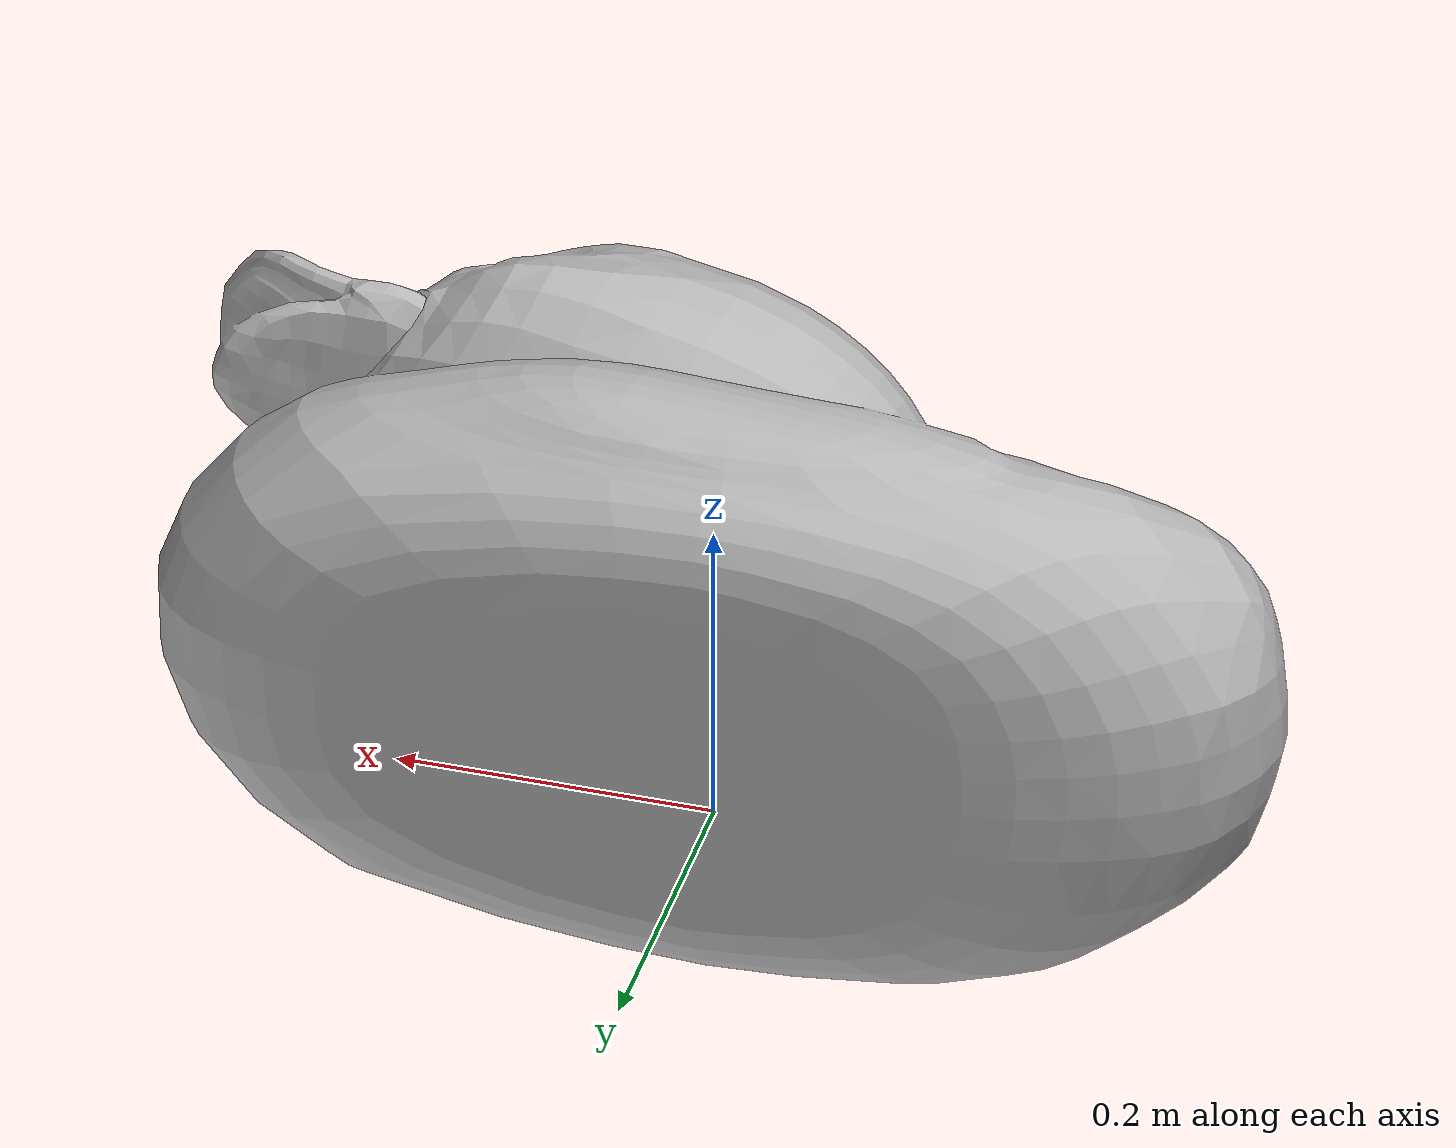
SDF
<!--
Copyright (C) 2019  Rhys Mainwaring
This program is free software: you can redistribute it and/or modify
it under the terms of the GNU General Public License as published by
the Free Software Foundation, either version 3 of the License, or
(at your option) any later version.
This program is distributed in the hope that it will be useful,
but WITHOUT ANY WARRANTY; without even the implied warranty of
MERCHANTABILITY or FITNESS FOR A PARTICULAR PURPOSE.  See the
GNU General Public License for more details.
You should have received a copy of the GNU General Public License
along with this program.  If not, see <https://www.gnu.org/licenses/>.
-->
<?xml version='1.0'?>
<sdf version='1.6'>

  <model name='nezha_duck'>
    <pose>0 0 0 0 0 0</pose>
    <static>false</static>

    <plugin name="hydrodynamics" filename="libnezha_hydrodynamics_plugin.so">
      <!-- Wave Model -->
      <wave_model>nezha_ocean_waves</wave_model>

      <!-- Markers -->
      <markers>
        <update_rate>30</update_rate>
        <water_patch>true</water_patch>
        <waterline>true</waterline>
        <underwater_surface>true</underwater_surface>
      </markers>
    </plugin>

    <link name="base_link">
      <visual name="base_visual">
        <pose>0 0 0 1.5708 0 0</pose>
        <geometry>
          <mesh>
            <uri>model://duck/meshes/duck.dae</uri>
          </mesh>
        </geometry>
      </visual>
      <collision name="base_collision">
        <pose>0 0 0 0 0 0</pose>
        <geometry>
          <mesh>
            <uri>model://duck/meshes/duck_collision.stl</uri>
          </mesh>
        </geometry>
      </collision>
      <inertial>
        <pose>0 0 0 0 0 0</pose>
        <mass>400</mass>
        <inertia>
          <ixx>266</ixx>
          <ixy>0</ixy>
          <iyy>266</iyy>
          <iyz>0</iyz>
          <izz>266</izz>
        </inertia>
      </inertial>
    </link>
  </model>
</sdf>
